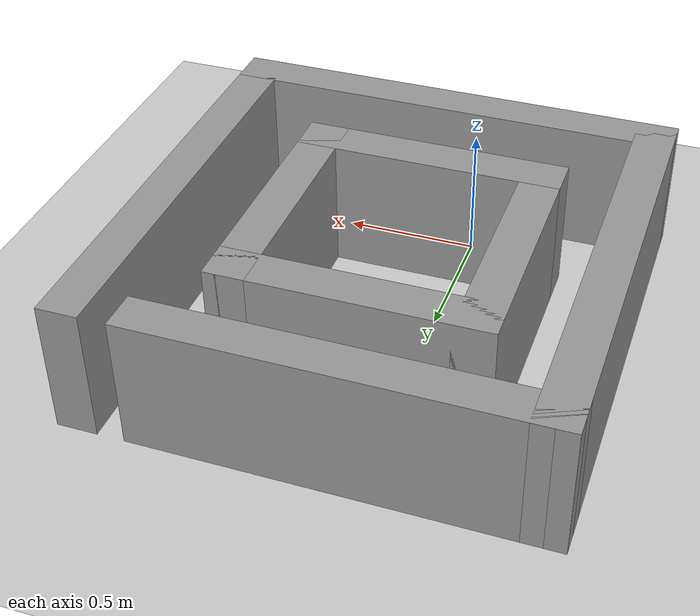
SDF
<sdf version="1.7">
 <world name="default">
  <light name="sun" type="directional">
   <pose>0 0 10 0 -0 0</pose>
   <diffuse>0.8 0.8 0.8 1</diffuse>
   <specular>0.2 0.2 0.2 1</specular>
   <attenuation>
    <range>1000</range>
    <constant>0.9</constant>
    <linear>0.01</linear>
    <quadratic>0.001</quadratic>
   </attenuation>
   <direction>-0.5 0.1 -0.9</direction>
   <spot><inner_angle>0</inner_angle><outer_angle>0</outer_angle><falloff>0</falloff></spot>
  </light>
  <model name="ground_plane">
   <static>1</static>
   <link name="link">
    <collision name="collision">
     <geometry><plane><normal>0 0 1</normal><size>100 100</size></plane></geometry>
     <surface><friction><ode><mu>100</mu><mu2>50</mu2></ode></friction></surface>
    </collision>
    <visual name="visual">
     <cast_shadows>0</cast_shadows>
     <geometry><plane><normal>0 0 1</normal><size>100 100</size></plane></geometry>
     <material>
      <script><uri>file://media/materials/scripts/gazebo.material</uri><name>Gazebo/Grey</name></script>
     </material>
    </visual>
   </link>
  </model>
  <gravity>0 0 -9.8</gravity>
  <magnetic_field>6e-06 2.3e-05 -4.2e-05</magnetic_field>
  <atmosphere type="adiabatic"/>
  <physics type="ode">
   <max_step_size>0.001</max_step_size>
   <real_time_factor>1</real_time_factor>
   <real_time_update_rate>1000</real_time_update_rate>
  </physics>
  <scene><ambient>0.4 0.4 0.4 1</ambient><background>0.7 0.7 0.7 1</background><shadows>1</shadows></scene>
  <audio><device>default</device></audio>
  <spherical_coordinates>
   <surface_model>EARTH_WGS84</surface_model>
   <latitude_deg>0</latitude_deg>
   <longitude_deg>0</longitude_deg>
   <elevation>0</elevation>
   <heading_deg>0</heading_deg>
  </spherical_coordinates>
  <model name="maze">
   <pose>0.166971 0.55553 0 0 -0 0</pose>
   <link name="Wall_10">
    <collision name="Wall_10_Collision">
     <geometry><box><size>1 0.15 0.5</size></box></geometry>
     <pose>0 0 0.25 0 -0 0</pose>
    </collision>
    <visual name="Wall_10_Visual">
     <pose>0 0 0.25 0 -0 0</pose>
     <geometry><box><size>1 0.15 0.5</size></box></geometry>
     <material>
      <script><uri>file://media/materials/scripts/gazebo.material</uri><name>Gazebo/Grey</name></script>
      <ambient>1 1 1 1</ambient>
     </material>
     <meta><layer>0</layer></meta>
    </visual>
    <pose>-0.039971 0.45447 0 0 -0 0</pose>
   </link>
   <link name="Wall_12">
    <collision name="Wall_12_Collision">
     <geometry><box><size>1 0.15 0.5</size></box></geometry>
     <pose>0 0 0.25 0 -0 0</pose>
    </collision>
    <visual name="Wall_12_Visual">
     <pose>0 0 0.25 0 -0 0</pose>
     <geometry><box><size>1 0.15 0.5</size></box></geometry>
     <material>
      <script><uri>file://media/materials/scripts/gazebo.material</uri><name>Gazebo/Grey</name></script>
      <ambient>1 1 1 1</ambient>
     </material>
     <meta><layer>0</layer></meta>
    </visual>
    <pose>0.385029 0.02947 0 0 -0 -1.5708</pose>
   </link>
   <link name="Wall_13">
    <collision name="Wall_13_Collision">
     <geometry><box><size>1 0.15 0.5</size></box></geometry>
     <pose>0 0 0.25 0 -0 0</pose>
    </collision>
    <visual name="Wall_13_Visual">
     <pose>0 0 0.25 0 -0 0</pose>
     <geometry><box><size>1 0.15 0.5</size></box></geometry>
     <material>
      <script><uri>file://media/materials/scripts/gazebo.material</uri><name>Gazebo/Grey</name></script>
      <ambient>1 1 1 1</ambient>
     </material>
     <meta><layer>0</layer></meta>
    </visual>
    <pose>-0.039971 -0.39553 0 0 -0 3.14159</pose>
   </link>
   <link name="Wall_14">
    <collision name="Wall_14_Collision">
     <geometry><box><size>1 0.15 0.5</size></box></geometry>
     <pose>0 0 0.25 0 -0 0</pose>
    </collision>
    <visual name="Wall_14_Visual">
     <pose>0 0 0.25 0 -0 0</pose>
     <geometry><box><size>1 0.15 0.5</size></box></geometry>
     <material>
      <script><uri>file://media/materials/scripts/gazebo.material</uri><name>Gazebo/Grey</name></script>
      <ambient>1 1 1 1</ambient>
     </material>
     <meta><layer>0</layer></meta>
    </visual>
    <pose>-0.464971 0.02947 0 0 -0 1.5708</pose>
   </link>
   <link name="Wall_16">
    <collision name="Wall_16_Collision">
     <geometry><box><size>1.5 0.15 0.5</size></box></geometry>
     <pose>0 0 0.25 0 -0 0</pose>
    </collision>
    <visual name="Wall_16_Visual">
     <pose>0 0 0.25 0 -0 0</pose>
     <geometry><box><size>1.5 0.15 0.5</size></box></geometry>
     <material>
      <script><uri>file://media/materials/scripts/gazebo.material</uri><name>Gazebo/Grey</name></script>
      <ambient>1 1 1 1</ambient>
     </material>
     <meta><layer>0</layer></meta>
    </visual>
    <pose>-0.124971 0.79997 0 0 -0 -0.005185</pose>
   </link>
   <link name="Wall_22">
    <collision name="Wall_22_Collision">
     <geometry><box><size>1.75 0.15 0.5</size></box></geometry>
     <pose>0 0 0.25 0 -0 0</pose>
    </collision>
    <visual name="Wall_22_Visual">
     <pose>0 0 0.25 0 -0 0</pose>
     <geometry><box><size>1.75 0.15 0.5</size></box></geometry>
     <material>
      <script><uri>file://media/materials/scripts/gazebo.material</uri><name>Gazebo/Grey</name></script>
      <ambient>1 1 1 1</ambient>
     </material>
     <meta><layer>0</layer></meta>
    </visual>
    <pose>-0.799971 0.00347 0 0 -0 -1.5708</pose>
   </link>
   <link name="Wall_23">
    <collision name="Wall_23_Collision">
     <geometry><box><size>1.75 0.15 0.5</size></box></geometry>
     <pose>0 0 0.25 0 -0 0</pose>
    </collision>
    <visual name="Wall_23_Visual">
     <pose>0 0 0.25 0 -0 0</pose>
     <geometry><box><size>1.75 0.15 0.5</size></box></geometry>
     <material>
      <script><uri>file://media/materials/scripts/gazebo.material</uri><name>Gazebo/Grey</name></script>
      <ambient>1 1 1 1</ambient>
     </material>
     <meta><layer>0</layer></meta>
    </visual>
    <pose>2.9e-05 -0.80003 0 0 -0 -0.004375</pose>
   </link>
   <link name="Wall_24">
    <collision name="Wall_24_Collision">
     <geometry><box><size>1.75 0.15 0.5</size></box></geometry>
     <pose>0 0 0.25 0 -0 0</pose>
    </collision>
    <visual name="Wall_24_Visual">
     <pose>0 0 0.25 0 -0 0</pose>
     <geometry><box><size>1.75 0.15 0.5</size></box></geometry>
     <material>
      <script><uri>file://media/materials/scripts/gazebo.material</uri><name>Gazebo/Grey</name></script>
      <ambient>1 1 1 1</ambient>
     </material>
     <meta><layer>0</layer></meta>
    </visual>
    <pose>0.800029 -0.00353 0 0 -0 1.5708</pose>
   </link>
   <static>1</static>
  </model>
 </world>
</sdf>
